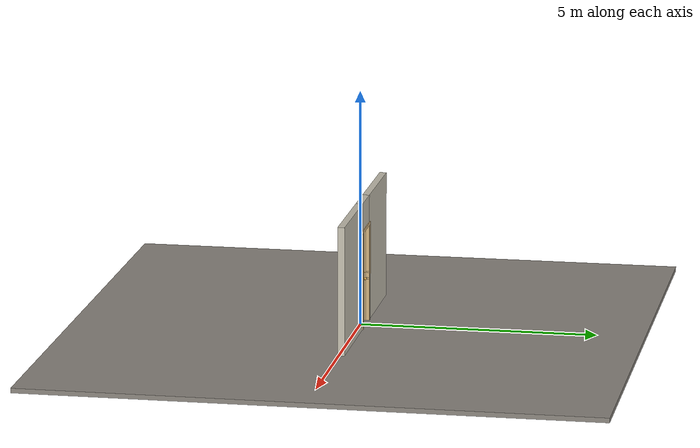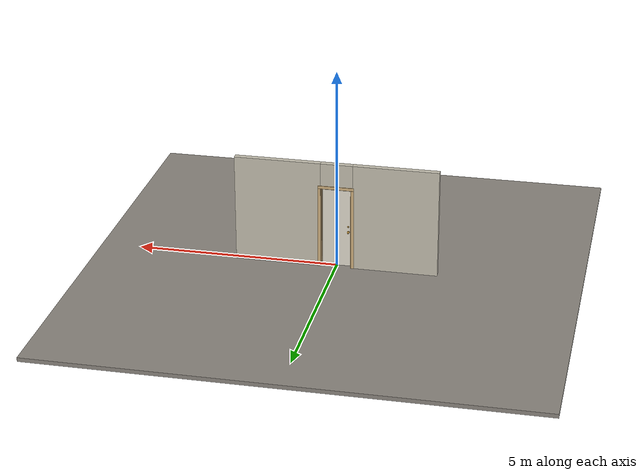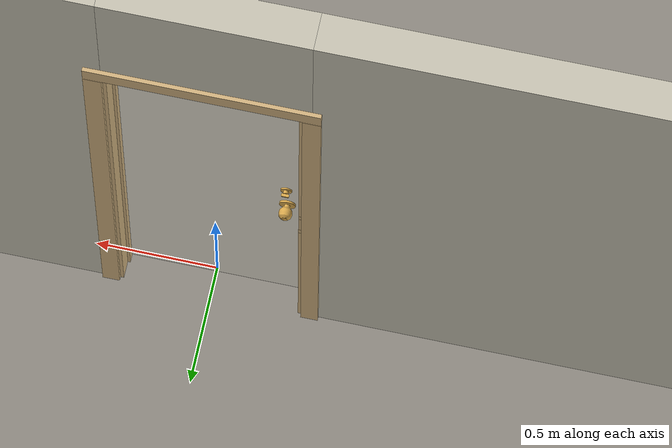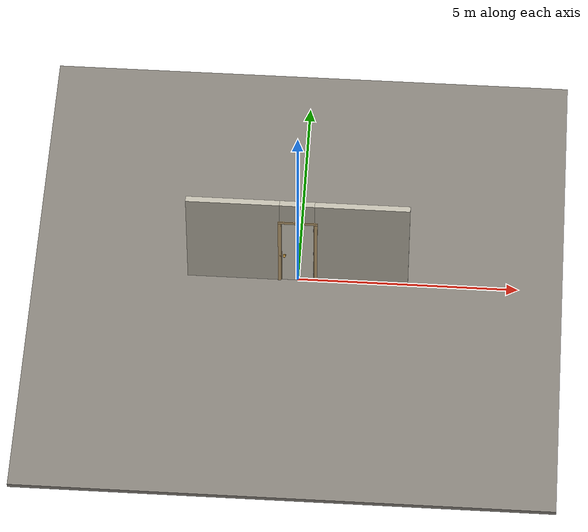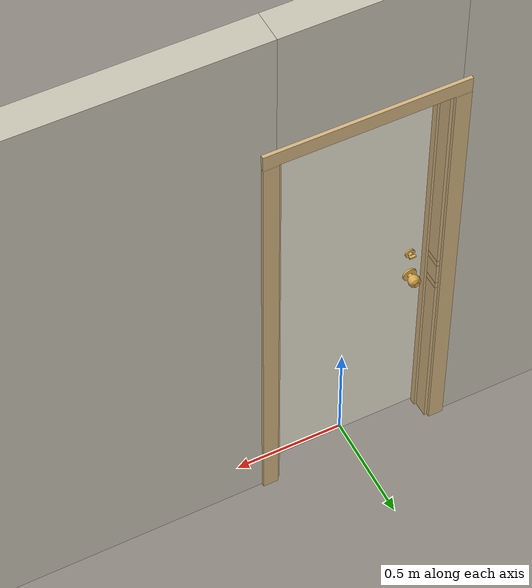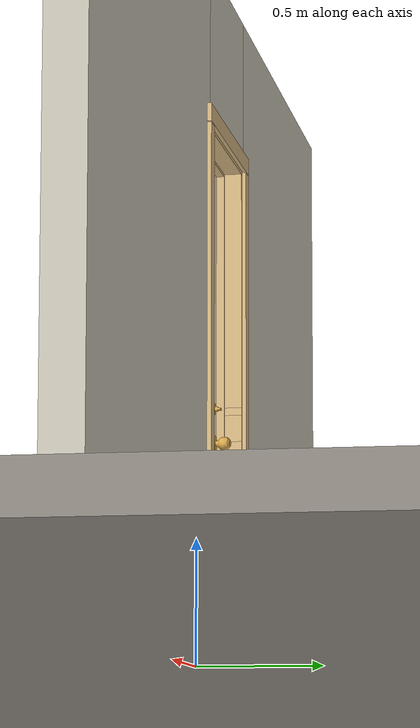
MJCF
<?xml version="1.0" ?>
<mujoco model="db0051_swing_single_full">
  <compiler angle="radian" meshdir="../../hardware" texturedir="../../textures" autolimits="true" inertiafromgeom="false"/>
  <option timestep="0.002" integrator="implicitfast" cone="elliptic" impratio="10" noslip_iterations="3">
    <flag multiccd="enable"/>
  </option>
  <size memory="16M"/>
  <default>
    <geom condim="4" solref="0.005 1" solimp="0.95 0.99 0.001"/>
    <joint solreflimit="0.005 1" solimplimit="0.95 0.99 0.001"/>
    <tendon solreflimit="0.005 1"/>
    <equality solref="0.002 1"/>
  </default>
  <visual>
    <headlight ambient="0.4 0.4 0.4" diffuse="0.7 0.7 0.7" specular="0.2 0.2 0.2"/>
    <quality shadowsize="4096"/>
    <map znear="0.01" zfar="60"/>
  </visual>
  <asset>
    <mesh name="hinge_96510cf394" file="hinge_96510cf394.obj"/>
    <mesh name="hinge_jamb_7fd4ca52b2" file="hinge_jamb_7fd4ca52b2.obj"/>
    <mesh name="knob_d1888f6f03" file="knob_d1888f6f03.obj"/>
    <mesh name="thumbturn_eb5c9899a3" file="thumbturn_eb5c9899a3.obj"/>
    <material name="mat_floor" rgba="0.55 0.53 0.5 1" specular="0.2" shininess="0.15" reflectance="0"/>
    <material name="mat_wall" rgba="0.78 0.76 0.7 1" specular="0.2" shininess="0.1" reflectance="0"/>
    <material name="mat_leaf" rgba="0.9 0.88 0.82 1" specular="0.2" shininess="0.45" reflectance="0"/>
    <material name="mat_leaf_louver" rgba="0.765 0.748 0.697 1" specular="0.2" shininess="0.4" reflectance="0"/>
    <material name="mat_hinge" rgba="0.65 0.66 0.68 1" specular="0.74" shininess="0.5" reflectance="0.36"/>
    <material name="mat_op_brass" rgba="0.85 0.66 0.3 1" specular="0.8" shininess="0.75" reflectance="0.4"/>
    <material name="mat_trim" rgba="0.85 0.66 0.3 1" specular="0.8" shininess="0.75" reflectance="0.4"/>
    <material name="mat_bolt" rgba="0.85 0.66 0.3 1" specular="0.8" shininess="0.75" reflectance="0.4"/>
    <material name="mat_deadbolt" rgba="0.85 0.66 0.3 1" specular="0.8" shininess="0.75" reflectance="0.4"/>
    <material name="mat_frame" rgba="0.82 0.7 0.5 1" specular="0.2" shininess="0.45" reflectance="0"/>
    <texture name="skybox" type="skybox" builtin="gradient" rgb1="0.6 0.7 0.85" rgb2="0.9 0.92 0.95" width="256" height="256"/>
  </asset>
  <worldbody>
    <light name="sun" pos="1.5 -2.5 4" dir="-0.3 0.5 -0.8" directional="true" diffuse="0.8 0.8 0.8" specular="0.3 0.3 0.3" castshadow="true"/>
    <light name="fill" pos="-1.5 2.5 3" dir="0.3 -0.5 -0.7" directional="true" diffuse="0.35 0.35 0.4" castshadow="false"/>
    <camera name="robot_view" pos="0 -2.494187 1.734312" xyaxes="1 0 0 0 0.26963 0.962964" fovy="52"/>
    <camera name="far_view" pos="0 2.590187 1.734312" xyaxes="-1 0 0 0 -0.26963 0.962964" fovy="52"/>
    <camera name="iso" pos="-1.932062 -2.087438 2.141063" xyaxes="0.741536 -0.670913 0 0.242917 0.268487 0.932151" fovy="46"/>
    <camera name="detail_handle" pos="-0.115 -0.864 1.194" xyaxes="0.97561 0.219512 0 -0.070934 0.315262 0.94635" fovy="38"/>
    <geom name="floor" type="box" size="6 6 0.05" pos="0 0 -0.05" material="mat_floor" group="0" contype="1" conaffinity="1" friction="0.8 0.005 0.0001" density="2400"/>
    <geom name="wall_left" type="box" size="1.046 0.0725 1.35" pos="-1.454 0.048 1.35" material="mat_wall" group="0" contype="1" conaffinity="1" friction="0.6 0.005 0.0001" density="800"/>
    <geom name="wall_right" type="box" size="1.061 0.0725 1.35" pos="1.439 0.048 1.35" material="mat_wall" group="0" contype="1" conaffinity="1" friction="0.6 0.005 0.0001" density="800"/>
    <geom name="wall_header" type="box" size="0.393 0.0725 0.303" pos="-0.015 0.048 2.397" material="mat_wall" group="0" contype="1" conaffinity="1" friction="0.6 0.005 0.0001" density="800"/>
    <geom name="hinge_0_jamb" type="mesh" mesh="hinge_jamb_7fd4ca52b2" pos="0.356 -0.0245 0.259" quat="0 0 1 0" material="mat_hinge" group="1" contype="0" conaffinity="0" density="7850"/>
    <geom name="hinge_1_jamb" type="mesh" mesh="hinge_jamb_7fd4ca52b2" pos="0.356 -0.0245 1.025" quat="0 0 1 0" material="mat_hinge" group="1" contype="0" conaffinity="0" density="7850"/>
    <geom name="hinge_2_jamb" type="mesh" mesh="hinge_jamb_7fd4ca52b2" pos="0.356 -0.0245 1.861" quat="0 0 1 0" material="mat_hinge" group="1" contype="0" conaffinity="0" density="7850"/>
    <geom name="leaf_deadbolt_strike_b" type="box" size="0.0155 0.003 0.0005" pos="-0.3585 0 1.0355" quat="0.5 0.5 0.5 0.5" material="mat_deadbolt" group="1" contype="0" conaffinity="0" density="7800"/>
    <geom name="leaf_deadbolt_strike_l" type="box" size="0.003 0.0155 0.0005" pos="-0.3585 -0.0125 1.054" quat="0.5 0.5 0.5 0.5" material="mat_deadbolt" group="1" contype="0" conaffinity="0" density="7800"/>
    <geom name="leaf_deadbolt_strike_t" type="box" size="0.0155 0.003 0.0005" pos="-0.3585 0 1.0725" quat="0.5 0.5 0.5 0.5" material="mat_deadbolt" group="1" contype="0" conaffinity="0" density="7800"/>
    <geom name="leaf_deadbolt_strike_r" type="box" size="0.003 0.0155 0.0005" pos="-0.3585 0.0125 1.054" quat="0.5 0.5 0.5 0.5" material="mat_deadbolt" group="1" contype="0" conaffinity="0" density="7800"/>
    <geom name="jamb_hinge" type="box" size="0.0095 0.0725 1.0225" pos="0.3685 0.048 1.0225" material="mat_frame" group="0" contype="1" conaffinity="1" friction="0.6 0.005 0.0001" density="400"/>
    <geom name="strike_914_wall_n" type="box" size="0.0245 0.056325 0.0167" pos="-0.3835 0.064175 0.914" material="mat_frame" group="0" contype="1" conaffinity="1" friction="0.6 0.005 0.0001" density="400"/>
    <geom name="strike_914_wall_p" type="box" size="0.0245 0.008 0.0167" pos="-0.3835 -0.01585 0.914" material="mat_frame" group="0" contype="1" conaffinity="1" friction="0.6 0.005 0.0001" density="400"/>
    <geom name="strike_914_ramp" type="box" size="0.0245 0.01649 0.0167" pos="-0.388136 -0.028673 0.914" quat="0.977148 0 0 -0.212558" material="mat_frame" group="0" contype="1" conaffinity="1" friction="0.12 0.005 0.0001" density="400"/>
    <geom name="strike_914_back" type="box" size="0.01615 0.00785 0.0167" pos="-0.39185 0 0.914" material="mat_frame" group="0" contype="1" conaffinity="1" friction="0.6 0.005 0.0001" density="400"/>
    <geom name="strike_1054_wall_n" type="box" size="0.0245 0.0555 0.0155" pos="-0.3835 0.065 1.054" material="mat_frame" group="0" contype="1" conaffinity="1" friction="0.6 0.005 0.0001" density="400"/>
    <geom name="strike_1054_wall_p" type="box" size="0.0245 0.0075 0.0155" pos="-0.3835 -0.017 1.054" material="mat_frame" group="0" contype="1" conaffinity="1" friction="0.6 0.005 0.0001" density="400"/>
    <geom name="strike_1054_back" type="box" size="0.0098 0.0095 0.0155" pos="-0.3982 0 1.054" material="mat_frame" group="0" contype="1" conaffinity="1" friction="0.6 0.005 0.0001" density="400"/>
    <geom name="jamb_strike_0" type="box" size="0.0245 0.0725 0.44865" pos="-0.3835 0.048 0.44865" material="mat_frame" group="0" contype="1" conaffinity="1" friction="0.6 0.005 0.0001" density="400"/>
    <geom name="jamb_strike_1" type="box" size="0.0245 0.0725 0.0539" pos="-0.3835 0.048 0.9846" material="mat_frame" group="0" contype="1" conaffinity="1" friction="0.6 0.005 0.0001" density="400"/>
    <geom name="jamb_strike_2" type="box" size="0.0245 0.0725 0.48775" pos="-0.3835 0.048 1.55725" material="mat_frame" group="0" contype="1" conaffinity="1" friction="0.6 0.005 0.0001" density="400"/>
    <geom name="jamb_head" type="box" size="0.393 0.0725 0.0095" pos="-0.015 0.048 2.0545" material="mat_frame" group="0" contype="1" conaffinity="1" friction="0.6 0.005 0.0001" density="400"/>
    <geom name="head_stud" type="box" size="0.393 0.0725 0.015" pos="-0.015 0.048 2.079" material="mat_wall" group="0" contype="1" conaffinity="1" friction="0.6 0.005 0.0001" density="500"/>
    <geom name="stop_hinge" type="box" size="0.0055 0.016 1.0225" pos="0.3535 0.034 1.0225" material="mat_frame" group="0" contype="1" conaffinity="1" friction="0.6 0.005 0.0001" density="400"/>
    <geom name="stop_strike" type="box" size="0.0055 0.016 1.0225" pos="-0.3535 0.034 1.0225" material="mat_frame" group="0" contype="1" conaffinity="1" friction="0.6 0.005 0.0001" density="400"/>
    <geom name="stop_head" type="box" size="0.359 0.016 0.0055" pos="0 0.034 2.0395" material="mat_frame" group="0" contype="1" conaffinity="1" friction="0.6 0.005 0.0001" density="400"/>
    <geom name="casing_l_n" type="box" size="0.035 0.008 1.032" pos="-0.408 -0.0325 1.0225" material="mat_frame" group="2" contype="0" conaffinity="0" density="400"/>
    <geom name="casing_r_n" type="box" size="0.035 0.008 1.032" pos="0.408 -0.0325 1.0225" material="mat_frame" group="2" contype="0" conaffinity="0" density="400"/>
    <geom name="casing_h_n" type="box" size="0.443 0.008 0.035" pos="0 -0.0325 2.094" material="mat_frame" group="2" contype="0" conaffinity="0" density="400"/>
    <geom name="casing_l_p" type="box" size="0.035 0.008 1.032" pos="-0.408 0.1285 1.0225" material="mat_frame" group="2" contype="0" conaffinity="0" density="400"/>
    <geom name="casing_r_p" type="box" size="0.035 0.008 1.032" pos="0.408 0.1285 1.0225" material="mat_frame" group="2" contype="0" conaffinity="0" density="400"/>
    <geom name="casing_h_p" type="box" size="0.443 0.008 0.035" pos="0 0.1285 2.094" material="mat_frame" group="2" contype="0" conaffinity="0" density="400"/>
    <site name="approach_point" pos="0 -1.5 0" quat="1 0 0 0" size="0.05" rgba="0.2 0.9 0.2 0.5" group="4"/>
    <site name="goal_point" pos="0 1.5 0" quat="1 0 0 0" size="0.05" rgba="0.2 0.9 0.2 0.5" group="4"/>
    <site name="door_plane_center" pos="0 0 1.0225" quat="1 0 0 0" size="0.02" rgba="0.2 0.9 0.2 0.5" group="4"/>
    <body name="leaf" pos="0.359 0 0">
      <inertial pos="-0.346707 -0.00052 1.025754" mass="11.261904" quat="0.500734 -0.498734 0.501248 0.49928" diaginertia="0.510135839 3.900915192 4.408554592"/>
      <joint name="leaf_hinge" type="hinge" axis="0 0 1" pos="-0.003 -0.0245 0" limited="true" range="0 1.745329" damping="0.143782" frictionloss="0.171487" armature="0.02"/>
      <geom name="leaf_slab" type="box" size="0.3555 0.0175 1.016" pos="-0.3585 0 1.025" material="mat_leaf" group="0" contype="1" conaffinity="1" friction="0.35 0.005 0.0001" density="1"/>
      <geom name="leaf_louver_0" type="box" size="0.2655 0.002 0.026356" pos="-0.3585 0 0.257621" quat="0.953717 0.300706 0 0" material="mat_leaf_louver" group="1" contype="0" conaffinity="0" density="1"/>
      <geom name="leaf_louver_1" type="box" size="0.2655 0.002 0.026356" pos="-0.3585 0 0.307824" quat="0.953717 0.300706 0 0" material="mat_leaf_louver" group="1" contype="0" conaffinity="0" density="1"/>
      <geom name="leaf_louver_2" type="box" size="0.2655 0.002 0.026356" pos="-0.3585 0 0.358026" quat="0.953717 0.300706 0 0" material="mat_leaf_louver" group="1" contype="0" conaffinity="0" density="1"/>
      <geom name="leaf_louver_3" type="box" size="0.2655 0.002 0.026356" pos="-0.3585 0 0.408228" quat="0.953717 0.300706 0 0" material="mat_leaf_louver" group="1" contype="0" conaffinity="0" density="1"/>
      <geom name="leaf_louver_4" type="box" size="0.2655 0.002 0.026356" pos="-0.3585 0 0.458431" quat="0.953717 0.300706 0 0" material="mat_leaf_louver" group="1" contype="0" conaffinity="0" density="1"/>
      <geom name="leaf_louver_5" type="box" size="0.2655 0.002 0.026356" pos="-0.3585 0 0.508633" quat="0.953717 0.300706 0 0" material="mat_leaf_louver" group="1" contype="0" conaffinity="0" density="1"/>
      <geom name="leaf_louver_6" type="box" size="0.2655 0.002 0.026356" pos="-0.3585 0 0.558835" quat="0.953717 0.300706 0 0" material="mat_leaf_louver" group="1" contype="0" conaffinity="0" density="1"/>
      <geom name="leaf_louver_7" type="box" size="0.2655 0.002 0.026356" pos="-0.3585 0 0.609038" quat="0.953717 0.300706 0 0" material="mat_leaf_louver" group="1" contype="0" conaffinity="0" density="1"/>
      <geom name="leaf_louver_8" type="box" size="0.2655 0.002 0.026356" pos="-0.3585 0 0.65924" quat="0.953717 0.300706 0 0" material="mat_leaf_louver" group="1" contype="0" conaffinity="0" density="1"/>
      <geom name="leaf_louver_9" type="box" size="0.2655 0.002 0.026356" pos="-0.3585 0 0.709442" quat="0.953717 0.300706 0 0" material="mat_leaf_louver" group="1" contype="0" conaffinity="0" density="1"/>
      <geom name="leaf_louver_10" type="box" size="0.2655 0.002 0.026356" pos="-0.3585 0 0.759645" quat="0.953717 0.300706 0 0" material="mat_leaf_louver" group="1" contype="0" conaffinity="0" density="1"/>
      <geom name="leaf_louver_11" type="box" size="0.2655 0.002 0.026356" pos="-0.3585 0 0.809847" quat="0.953717 0.300706 0 0" material="mat_leaf_louver" group="1" contype="0" conaffinity="0" density="1"/>
      <geom name="leaf_louver_12" type="box" size="0.2655 0.002 0.026356" pos="-0.3585 0 0.860049" quat="0.953717 0.300706 0 0" material="mat_leaf_louver" group="1" contype="0" conaffinity="0" density="1"/>
      <geom name="leaf_louver_13" type="box" size="0.2655 0.002 0.026356" pos="-0.3585 0 0.910252" quat="0.953717 0.300706 0 0" material="mat_leaf_louver" group="1" contype="0" conaffinity="0" density="1"/>
      <geom name="leaf_louver_14" type="box" size="0.2655 0.002 0.026356" pos="-0.3585 0 0.960454" quat="0.953717 0.300706 0 0" material="mat_leaf_louver" group="1" contype="0" conaffinity="0" density="1"/>
      <geom name="leaf_louver_15" type="box" size="0.2655 0.002 0.026356" pos="-0.3585 0 1.010656" quat="0.953717 0.300706 0 0" material="mat_leaf_louver" group="1" contype="0" conaffinity="0" density="1"/>
      <geom name="leaf_louver_16" type="box" size="0.2655 0.002 0.026356" pos="-0.3585 0 1.060859" quat="0.953717 0.300706 0 0" material="mat_leaf_louver" group="1" contype="0" conaffinity="0" density="1"/>
      <geom name="leaf_louver_17" type="box" size="0.2655 0.002 0.026356" pos="-0.3585 0 1.111061" quat="0.953717 0.300706 0 0" material="mat_leaf_louver" group="1" contype="0" conaffinity="0" density="1"/>
      <geom name="leaf_louver_18" type="box" size="0.2655 0.002 0.026356" pos="-0.3585 0 1.161264" quat="0.953717 0.300706 0 0" material="mat_leaf_louver" group="1" contype="0" conaffinity="0" density="1"/>
      <geom name="leaf_louver_19" type="box" size="0.2655 0.002 0.026356" pos="-0.3585 0 1.211466" quat="0.953717 0.300706 0 0" material="mat_leaf_louver" group="1" contype="0" conaffinity="0" density="1"/>
      <geom name="leaf_louver_20" type="box" size="0.2655 0.002 0.026356" pos="-0.3585 0 1.261668" quat="0.953717 0.300706 0 0" material="mat_leaf_louver" group="1" contype="0" conaffinity="0" density="1"/>
      <geom name="leaf_louver_21" type="box" size="0.2655 0.002 0.026356" pos="-0.3585 0 1.311871" quat="0.953717 0.300706 0 0" material="mat_leaf_louver" group="1" contype="0" conaffinity="0" density="1"/>
      <geom name="leaf_louver_22" type="box" size="0.2655 0.002 0.026356" pos="-0.3585 0 1.362073" quat="0.953717 0.300706 0 0" material="mat_leaf_louver" group="1" contype="0" conaffinity="0" density="1"/>
      <geom name="leaf_louver_23" type="box" size="0.2655 0.002 0.026356" pos="-0.3585 0 1.412275" quat="0.953717 0.300706 0 0" material="mat_leaf_louver" group="1" contype="0" conaffinity="0" density="1"/>
      <geom name="leaf_louver_24" type="box" size="0.2655 0.002 0.026356" pos="-0.3585 0 1.462478" quat="0.953717 0.300706 0 0" material="mat_leaf_louver" group="1" contype="0" conaffinity="0" density="1"/>
      <geom name="leaf_louver_25" type="box" size="0.2655 0.002 0.026356" pos="-0.3585 0 1.51268" quat="0.953717 0.300706 0 0" material="mat_leaf_louver" group="1" contype="0" conaffinity="0" density="1"/>
      <geom name="leaf_louver_26" type="box" size="0.2655 0.002 0.026356" pos="-0.3585 0 1.562882" quat="0.953717 0.300706 0 0" material="mat_leaf_louver" group="1" contype="0" conaffinity="0" density="1"/>
      <geom name="leaf_louver_27" type="box" size="0.2655 0.002 0.026356" pos="-0.3585 0 1.613085" quat="0.953717 0.300706 0 0" material="mat_leaf_louver" group="1" contype="0" conaffinity="0" density="1"/>
      <geom name="leaf_louver_28" type="box" size="0.2655 0.002 0.026356" pos="-0.3585 0 1.663287" quat="0.953717 0.300706 0 0" material="mat_leaf_louver" group="1" contype="0" conaffinity="0" density="1"/>
      <geom name="leaf_louver_29" type="box" size="0.2655 0.002 0.026356" pos="-0.3585 0 1.713489" quat="0.953717 0.300706 0 0" material="mat_leaf_louver" group="1" contype="0" conaffinity="0" density="1"/>
      <geom name="leaf_louver_30" type="box" size="0.2655 0.002 0.026356" pos="-0.3585 0 1.763692" quat="0.953717 0.300706 0 0" material="mat_leaf_louver" group="1" contype="0" conaffinity="0" density="1"/>
      <geom name="leaf_louver_31" type="box" size="0.2655 0.002 0.026356" pos="-0.3585 0 1.813894" quat="0.953717 0.300706 0 0" material="mat_leaf_louver" group="1" contype="0" conaffinity="0" density="1"/>
      <geom name="leaf_louver_32" type="box" size="0.2655 0.002 0.026356" pos="-0.3585 0 1.864096" quat="0.953717 0.300706 0 0" material="mat_leaf_louver" group="1" contype="0" conaffinity="0" density="1"/>
      <geom name="leaf_louver_33" type="box" size="0.2655 0.002 0.026356" pos="-0.3585 0 1.914299" quat="0.953717 0.300706 0 0" material="mat_leaf_louver" group="1" contype="0" conaffinity="0" density="1"/>
      <geom name="hinge_0" type="mesh" mesh="hinge_96510cf394" pos="-0.003 -0.0245 0.259" quat="0 0 1 0" material="mat_hinge" group="1" contype="0" conaffinity="0" density="7850"/>
      <geom name="hinge_1" type="mesh" mesh="hinge_96510cf394" pos="-0.003 -0.0245 1.025" quat="0 0 1 0" material="mat_hinge" group="1" contype="0" conaffinity="0" density="7850"/>
      <geom name="hinge_2" type="mesh" mesh="hinge_96510cf394" pos="-0.003 -0.0245 1.861" quat="0 0 1 0" material="mat_hinge" group="1" contype="0" conaffinity="0" density="7850"/>
      <geom name="leaf_latch_bolt_faceplate" type="box" size="0.0006 0.01235 0.0267" pos="-0.7134 0 0.914" material="mat_bolt" group="1" contype="0" conaffinity="0" density="8500"/>
      <geom name="leaf_deadbolt_faceplate" type="box" size="0.0006 0.014 0.0245" pos="-0.7134 0 1.054" material="mat_deadbolt" group="1" contype="0" conaffinity="0" density="8500"/>
      <site name="leaf_edge_mid" pos="-0.714 0 1.016" quat="1 0 0 0" size="0.02" rgba="0.2 0.9 0.2 0.5" group="4"/>
      <body name="leaf_handle" pos="-0.654 0 0.914">
        <inertial pos="0 0 0" mass="1.143961" quat="0.707107 0 0 -0.707107" diaginertia="0.00031237 0.003706292 0.003706292"/>
        <joint name="leaf_handle_hinge" type="hinge" axis="0 1 0" limited="true" range="0 0.87" damping="0.143613" frictionloss="0.038" stiffness="0.5" springref="-0.5" armature="0.01"/>
        <geom name="leaf_handle_spindle" type="cylinder" size="0.006 0.0255" pos="0 0 0" quat="0.707107 -0.707107 0 0" material="mat_op_brass" group="1" contype="0" conaffinity="0" density="7850"/>
        <geom name="leaf_handle_knob_n" type="mesh" mesh="knob_d1888f6f03" pos="0 -0.0175 0" quat="0 0 -0.707107 0.707107" material="mat_op_brass" group="1" contype="0" conaffinity="0" density="3000"/>
        <geom name="leaf_handle_knob_col_n" type="sphere" size="0.0243" pos="0 -0.064 0" material="mat_op_brass" group="0" contype="1" conaffinity="1" friction="0.9 0.01 0.0001" density="3000"/>
        <geom name="leaf_handle_knob_neck_n" type="cylinder" size="0.011 0.012" pos="0 -0.0295 0" quat="0.707107 -0.707107 0 0" material="mat_op_brass" group="3" contype="1" conaffinity="1" rgba="0.8 0.3 0.3 0.25" friction="0.6 0.005 0.0001" density="3000"/>
        <geom name="leaf_handle_knob_p" type="mesh" mesh="knob_d1888f6f03" pos="0 0.0175 0" quat="0 0 0.707107 0.707107" material="mat_op_brass" group="1" contype="0" conaffinity="0" density="3000"/>
        <geom name="leaf_handle_knob_col_p" type="sphere" size="0.0243" pos="0 0.064 0" material="mat_op_brass" group="0" contype="1" conaffinity="1" friction="0.9 0.01 0.0001" density="3000"/>
        <geom name="leaf_handle_knob_neck_p" type="cylinder" size="0.011 0.012" pos="0 0.0295 0" quat="0.707107 -0.707107 0 0" material="mat_op_brass" group="3" contype="1" conaffinity="1" rgba="0.8 0.3 0.3 0.25" friction="0.6 0.005 0.0001" density="3000"/>
        <site name="leaf_handle_grip_n" pos="0 -0.064 0" quat="1 0 0 0" size="0.012" rgba="0.2 0.9 0.2 0.5" group="4"/>
        <site name="leaf_handle_grip_p" pos="0 0.064 0" quat="1 0 0 0" size="0.012" rgba="0.2 0.9 0.2 0.5" group="4"/>
      </body>
      <body name="leaf_latch_bolt" pos="-0.714 0 0.914">
        <inertial pos="0.00865 0 0" mass="0.041419" quat="0.92388 0.382683 0 0" diaginertia="0.000000798 0.000005598 0.000005598"/>
        <joint name="leaf_latch_bolt_slide" type="slide" axis="1 0 0" limited="true" range="0 0.0127" damping="2" frictionloss="0.3" stiffness="300" springref="-0.008333" armature="0.1"/>
        <geom name="leaf_latch_bolt_capsule" type="capsule" size="0.00635 0.015" pos="0.00865 0 0" quat="0.707107 0 -0.707107 0" material="mat_bolt" group="0" contype="1" conaffinity="1" friction="0.2 0.005 0.0001" density="8500"/>
      </body>
      <body name="leaf_deadbolt" pos="-0.714 0 1.054">
        <inertial pos="0.0277 0 0" mass="0.18836" quat="0 0 0.707107 0.707107" diaginertia="0.000013829 0.000052194 0.000057986"/>
        <joint name="leaf_deadbolt_slide" type="slide" axis="1 0 0" limited="true" range="0 0.0254" damping="5" frictionloss="1.5" armature="0.1" ref="0.0254"/>
        <geom name="leaf_deadbolt_box" type="box" size="0.0277 0.008 0.0125" pos="0.0277 0 0" material="mat_deadbolt" group="0" contype="1" conaffinity="1" friction="0.3 0.005 0.0001" density="8500"/>
      </body>
      <body name="leaf_deadbolt_thumbturn" pos="-0.649 0.0175 1.054">
        <inertial pos="0 0.012928 0" mass="0.178946" quat="0.000001 -0.707107 0.707107 -0.000001" diaginertia="0.000026045 0.000026215 0.000032438"/>
        <joint name="leaf_deadbolt_thumbturn_hinge" type="hinge" axis="0 -1 0" limited="true" range="0 1.5708" damping="0.05" frictionloss="0.3" armature="0.005" ref="1.5708"/>
        <geom name="leaf_deadbolt_thumbturn_mesh" type="mesh" mesh="thumbturn_eb5c9899a3" pos="0 0 0" quat="0.500001 -0.500001 0.499999 0.499999" material="mat_deadbolt" group="0" contype="1" conaffinity="1" friction="0.6 0.005 0.0001" density="7100"/>
        <geom name="leaf_deadbolt_thumbturn_col" type="box" size="0.006 0.012 0.016" pos="0 0.02 0" quat="0.707105 0 -0.707108 0" material="mat_deadbolt" group="3" contype="1" conaffinity="1" rgba="0.8 0.3 0.3 0.25" friction="0.6 0.005 0.0001" density="7100"/>
      </body>
    </body>
  </worldbody>
  <tendon>
    <fixed name="leaf_latch_bolt_coupling" limited="true" range="0 10">
      <joint joint="leaf_latch_bolt_slide" coef="1"/>
      <joint joint="leaf_handle_hinge" coef="-0.015679"/>
    </fixed>
  </tendon>
  <equality>
    <joint name="leaf_deadbolt_couple" joint1="leaf_deadbolt_slide" joint2="leaf_deadbolt_thumbturn_hinge" polycoef="0 0.01617 0 0 0" active="true"/>
  </equality>
  <contact>
    <exclude body1="leaf_deadbolt" body2="leaf_deadbolt_thumbturn"/>
  </contact>
  <sensor>
    <jointpos name="leaf_hinge_pos" joint="leaf_hinge"/>
    <jointvel name="leaf_hinge_vel" joint="leaf_hinge"/>
    <jointpos name="leaf_handle_hinge_pos" joint="leaf_handle_hinge"/>
    <jointvel name="leaf_handle_hinge_vel" joint="leaf_handle_hinge"/>
    <jointpos name="leaf_latch_bolt_slide_pos" joint="leaf_latch_bolt_slide"/>
    <jointvel name="leaf_latch_bolt_slide_vel" joint="leaf_latch_bolt_slide"/>
    <jointpos name="leaf_deadbolt_slide_pos" joint="leaf_deadbolt_slide"/>
    <jointvel name="leaf_deadbolt_slide_vel" joint="leaf_deadbolt_slide"/>
    <jointpos name="leaf_deadbolt_thumbturn_hinge_pos" joint="leaf_deadbolt_thumbturn_hinge"/>
    <jointvel name="leaf_deadbolt_thumbturn_hinge_vel" joint="leaf_deadbolt_thumbturn_hinge"/>
  </sensor>
</mujoco>
